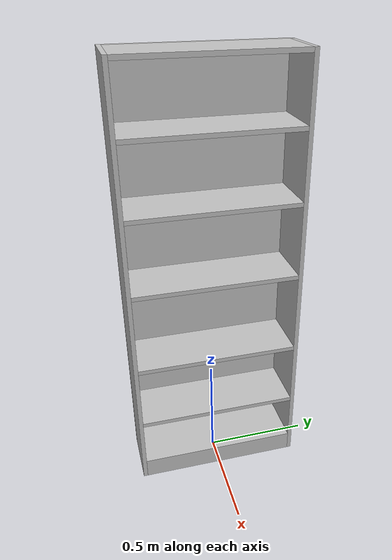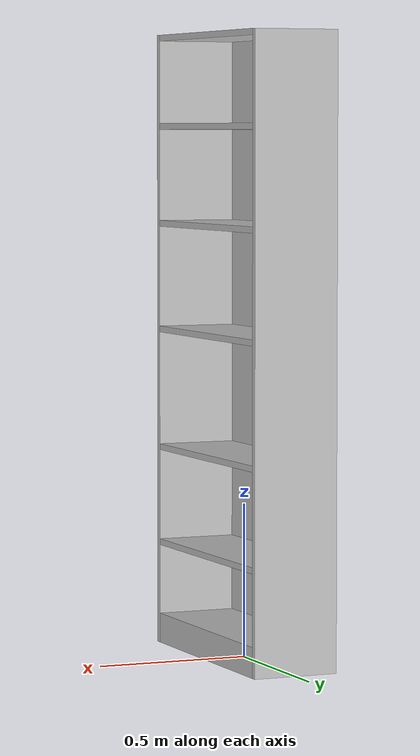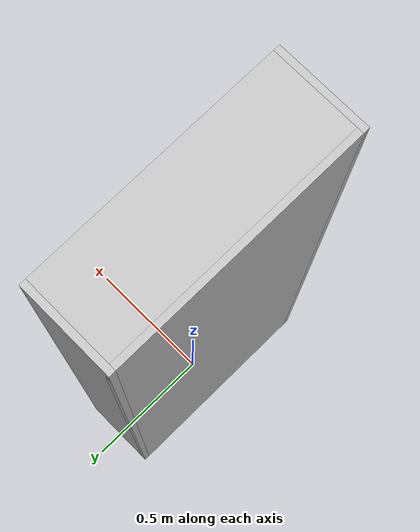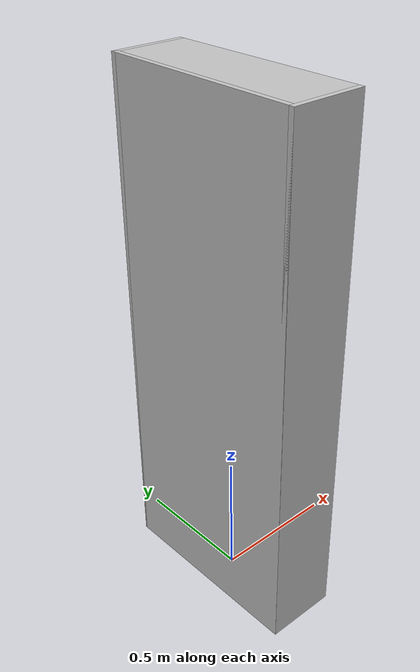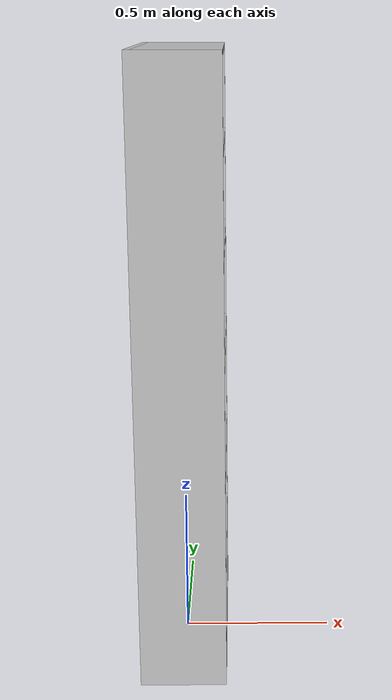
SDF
<?xml version="1.0"?>
<sdf version="1.6">
  <model name="rwc2016/bookcase2">
    <link name="1_link">
      <collision name="1_col">
        <geometry>
          <box>
            <size>0.281 0.02 2.018</size>
          </box>
        </geometry>
      </collision>
      <visual name="1_vis">
        <geometry>
          <box>
            <size>0.281 0.02 2.018</size>
          </box>
        </geometry>
        <material>
          <ambient>0.75 0.75 0.75 1</ambient>
        </material>
      </visual>
      <pose>0 -0.39 1.009 0 0 0</pose>
    </link>
    <link name="2_link">
      <collision name="2_col">
        <geometry>
          <box>
            <size>0.281 0.02 2.018</size>
          </box>
        </geometry>
      </collision>
      <visual name="2_vis">
        <geometry>
          <box>
            <size>0.281 0.02 2.018</size>
          </box>
        </geometry>
        <material>
          <ambient>0.75 0.75 0.75 1</ambient>
        </material>
      </visual>
      <pose>0 0.39 1.009 0 0 0</pose>
    </link>
    <link name="3_link">
      <collision name="3_col">
        <geometry>
          <box>
            <size>0.02 0.8 2.018</size>
          </box>
        </geometry>
      </collision>
      <visual name="3_vis">
        <geometry>
          <box>
            <size>0.02 0.8 2.018</size>
          </box>
        </geometry>
        <material>
          <ambient>0.75 0.75 0.75 1</ambient>
        </material>
      </visual>
      <pose>-0.1305 0 1.009 0 0 0</pose>
    </link>
    <link name="4_link">
      <collision name="4_col">
        <geometry>
          <box>
            <size>0.261 0.76 0.02</size>
          </box>
        </geometry>
      </collision>
      <visual name="4_vis">
        <geometry>
          <box>
            <size>0.261 0.76 0.02</size>
          </box>
        </geometry>
        <material>
          <ambient>0.75 0.75 0.75 1</ambient>
        </material>
      </visual>
      <pose>0.01 0 2.008 0 0 0</pose>
    </link>
    <link name="5_link">
      <collision name="5_col">
        <geometry>
          <box>
            <size>0.261 0.76 0.098</size>
          </box>
        </geometry>
      </collision>
      <visual name="5_vis">
        <geometry>
          <box>
            <size>0.261 0.76 0.098</size>
          </box>
        </geometry>
        <material>
          <ambient>0.75 0.75 0.75 1</ambient>
        </material>
      </visual>
      <pose>0.01 0 0.049 0 0 0</pose>
    </link>
    <link name="6_link">
      <collision name="6_col">
        <geometry>
          <box>
            <size>0.261 0.76 0.02</size>
          </box>
        </geometry>
      </collision>
      <visual name="6_vis">
        <geometry>
          <box>
            <size>0.261 0.76 0.02</size>
          </box>
        </geometry>
        <material>
          <ambient>0.75 0.75 0.75 1</ambient>
        </material>
      </visual>
      <pose>0.01 0 0.338 0 0 0</pose>
    </link>
    <link name="7_link">
      <collision name="7_col">
        <geometry>
          <box>
            <size>0.261 0.76 0.02</size>
          </box>
        </geometry>
      </collision>
      <visual name="7_vis">
        <geometry>
          <box>
            <size>0.261 0.76 0.02</size>
          </box>
        </geometry>
        <material>
          <ambient>0.75 0.75 0.75 1</ambient>
        </material>
      </visual>
      <pose>0.01 0 0.656 0 0 0</pose>
    </link>
    <link name="8_link">
      <collision name="8_col">
        <geometry>
          <box>
            <size>0.261 0.76 0.02</size>
          </box>
        </geometry>
      </collision>
      <visual name="8_vis">
        <geometry>
          <box>
            <size>0.261 0.76 0.02</size>
          </box>
        </geometry>
        <material>
          <ambient>0.75 0.75 0.75 1</ambient>
        </material>
      </visual>
      <pose>0.01 0 1.048 0 0 0</pose>
    </link>
    <link name="9_link">
      <collision name="9_col">
        <geometry>
          <box>
            <size>0.261 0.76 0.02</size>
          </box>
        </geometry>
      </collision>
      <visual name="9_vis">
        <geometry>
          <box>
            <size>0.261 0.76 0.02</size>
          </box>
        </geometry>
        <material>
          <ambient>0.75 0.75 0.75 1</ambient>
        </material>
      </visual>
      <pose>0.01 0 1.398 0 0 0</pose>
    </link>
    <link name="10_link">
      <collision name="10_col">
        <geometry>
          <box>
            <size>0.261 0.76 0.02</size>
          </box>
        </geometry>
      </collision>
      <visual name="10_vis">
        <geometry>
          <box>
            <size>0.261 0.76 0.02</size>
          </box>
        </geometry>
        <material>
          <ambient>0.75 0.75 0.75 1</ambient>
        </material>
      </visual>
      <pose>0.01 0 1.718 0 0 0</pose>
    </link>
    <link name="in_front_of">
      <virtual_volume name="in_front_of_vv">
        <geometry>
          <box>
            <size>0.2 0.6 0.01</size>
          </box>
        </geometry>
        <pose>0.6405 0.0 0.005 0 0 0</pose>
      </virtual_volume>
    </link>
    <link name="shelf1">
      <virtual_volume name="shelf1_vv">
        <geometry>
          <box>
            <size>0.201 0.7 0.19</size>
          </box>
        </geometry>
        <pose>0.01 0.0 0.213 0 0 0</pose>
      </virtual_volume>
    </link>
    <link name="shelf2">
      <virtual_volume name="shelf2_vv">
        <geometry>
          <box>
            <size>0.201 0.7 0.25</size>
          </box>
        </geometry>
        <pose>0.01 0.0 0.493 0 0 0</pose>
      </virtual_volume>
    </link>
    <link name="shelf3">
      <virtual_volume name="shelf3_vv">
        <geometry>
          <box>
            <size>0.201 0.7 0.25</size>
          </box>
        </geometry>
        <pose>0.01 0.0 0.811 0 0 0</pose>
      </virtual_volume>
    </link>
    <link name="shelf4">
      <virtual_volume name="shelf4_vv">
        <geometry>
          <box>
            <size>0.201 0.7 0.25</size>
          </box>
        </geometry>
        <pose>0.01 0.0 1.203 0 0 0</pose>
      </virtual_volume>
    </link>
    <link name="shelf5">
      <virtual_volume name="shelf5_vv">
        <geometry>
          <box>
            <size>0.201 0.7 0.25</size>
          </box>
        </geometry>
        <pose>0.01 0.0 1.553 0 0 0</pose>
      </virtual_volume>
    </link>
    <link name="shelf6">
      <virtual_volume name="shelf6_vv">
        <geometry>
          <box>
            <size>0.201 0.7 0.24</size>
          </box>
        </geometry>
        <pose>0.01 0.0 1.868 0 0 0</pose>
      </virtual_volume>
    </link>
    <static>true</static>
  </model>
</sdf>
